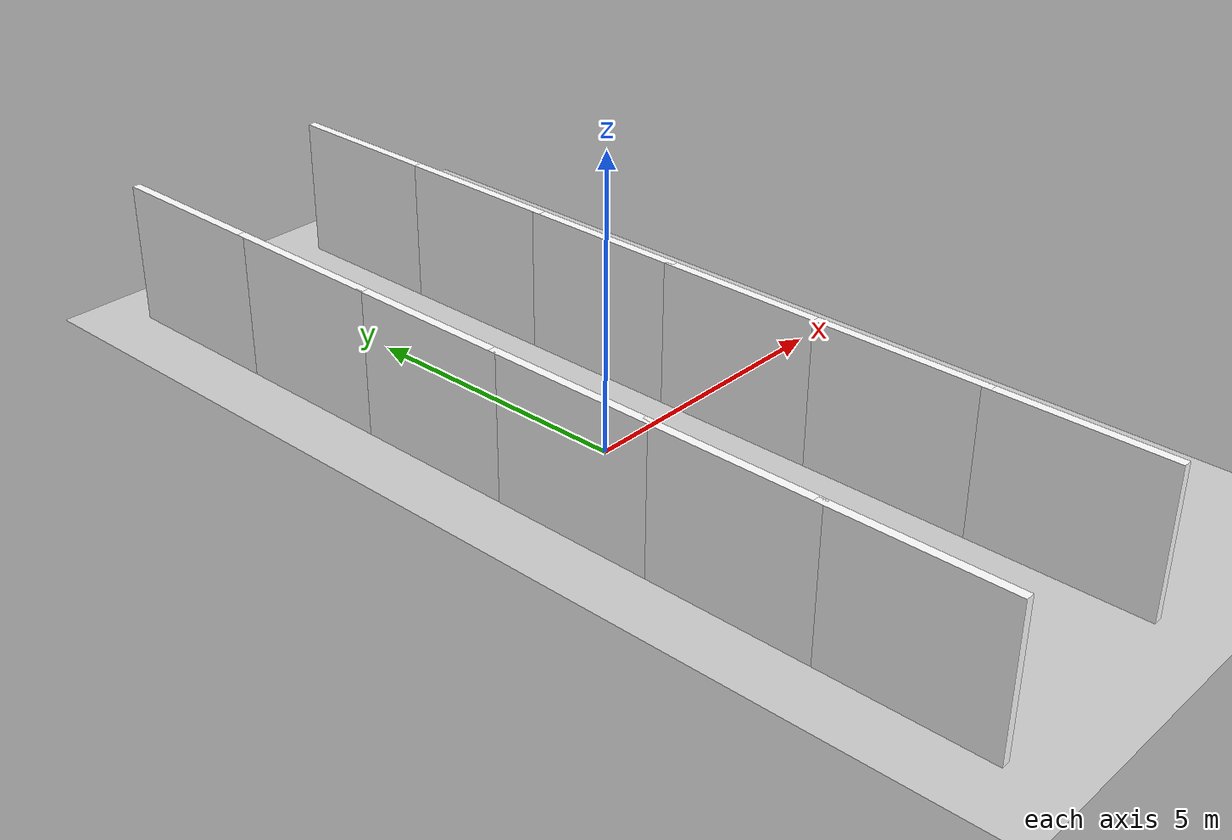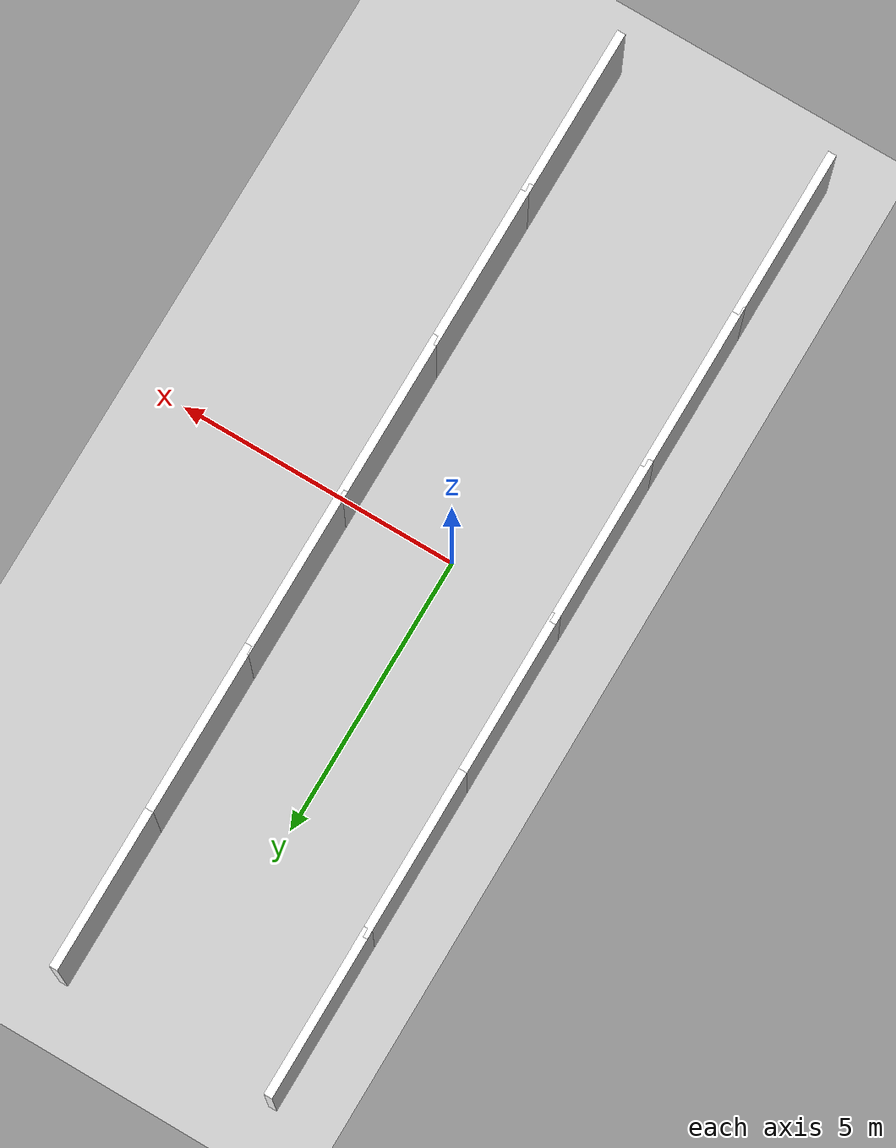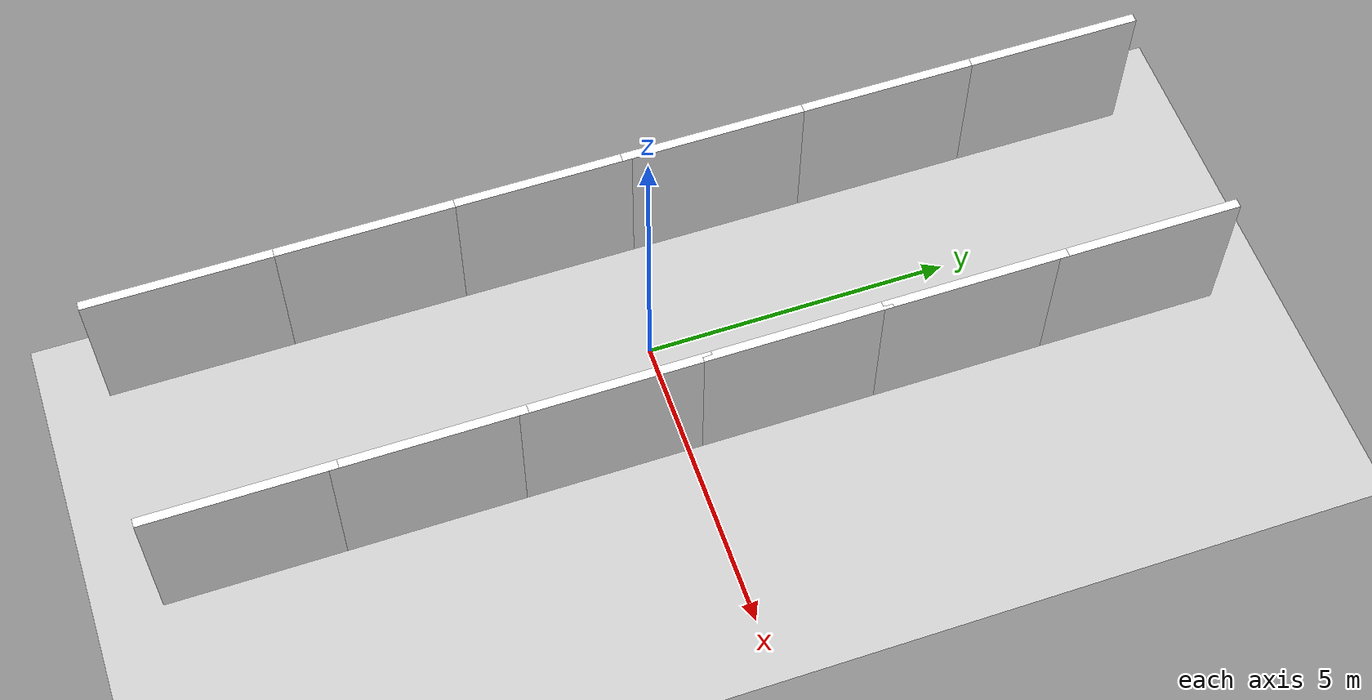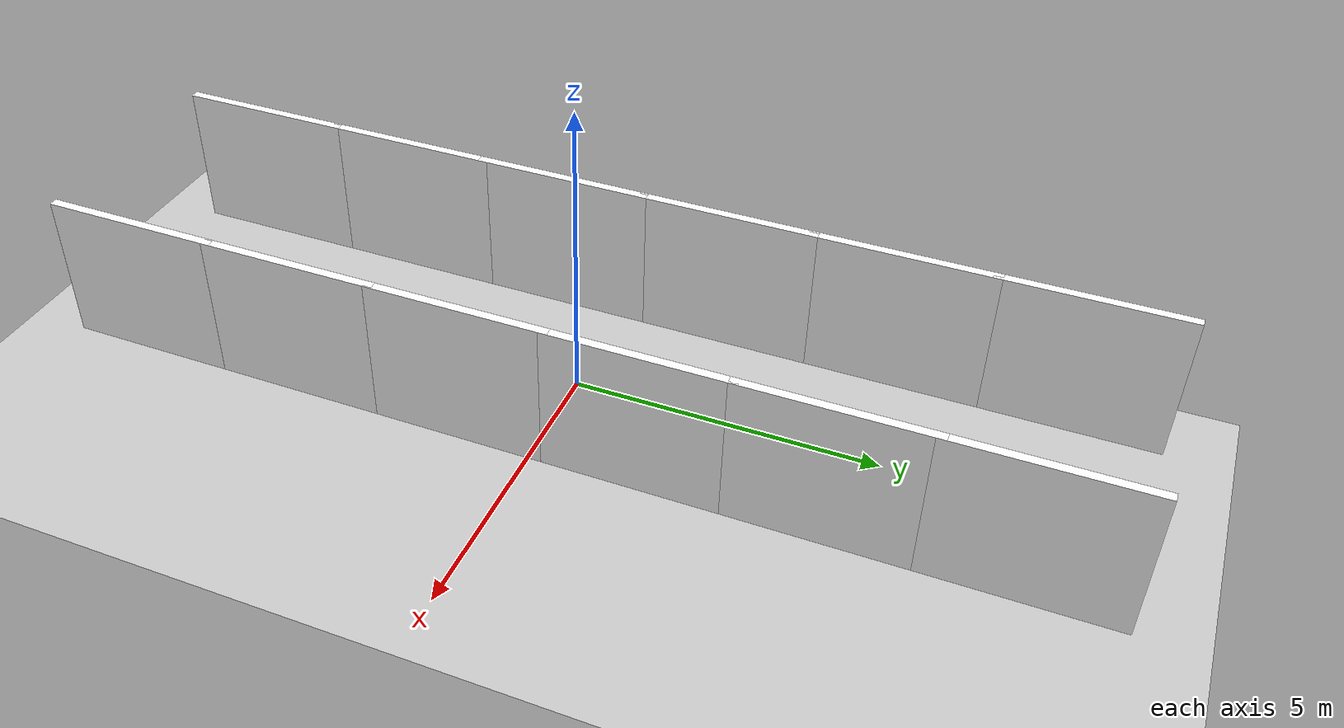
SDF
<sdf version="1.6">
 <world name="default">
  <model name="ground_plane">
   <static>1</static>
   <link name="link">
    <collision name="collision">
     <geometry><plane><normal>0 0 1</normal><size>100 100</size></plane></geometry>
     <surface><friction><ode><mu>100</mu><mu2>50</mu2></ode></friction></surface>
    </collision>
    <visual name="visual">
     <cast_shadows>0</cast_shadows>
     <geometry><plane><normal>0 0 1</normal><size>100 100</size></plane></geometry>
     <material>
      <script><uri>file://media/materials/scripts/gazebo.material</uri><name>Gazebo/Grey</name></script>
     </material>
    </visual>
   </link>
  </model>
  <model name="Corridor">
   <link name="Wall_0">
    <pose>-1.925 7.125 0 0 0 -1.5708</pose>
    <inertial>
     <mass>1</mass>
     <inertia><ixx>1</ixx><ixy>0</ixy><ixz>0</ixz><iyy>1</iyy><iyz>0</iyz><izz>1</izz></inertia>
    </inertial>
    <visual name="Wall_0_Visual">
     <pose>0 0 1.25 0 -0 0</pose>
     <geometry><box><size>3 0.15 2.5</size></box></geometry>
     <material>
      <script><uri>file://media/materials/scripts/gazebo.material</uri><name>BernoulliMix/Five</name></script>
      <ambient>1 1 1 1</ambient>
      <shader type="vertex"><normal_map>__default__</normal_map></shader>
      <lighting>0</lighting>
      <emissive>0 0 0 1</emissive>
     </material>
     <meta><layer>0</layer></meta>
    </visual>
    <collision name="Wall_0_Collision">
     <pose>0 0 1.25 0 -0 0</pose>
     <geometry><box><size>3 0.15 2.5</size></box></geometry>
     <surface>
      <friction>
       <ode><mu>1</mu><mu2>1</mu2><fdir1>0 0 0</fdir1><slip1>0</slip1><slip2>0</slip2></ode>
       <torsional>
        <coefficient>1</coefficient>
        <patch_radius>0</patch_radius>
        <surface_radius>0</surface_radius>
        <use_patch_radius>1</use_patch_radius>
        <ode><slip>0</slip></ode>
       </torsional>
      </friction>
      <bounce><restitution_coefficient>0</restitution_coefficient><threshold>1e+06</threshold></bounce>
      <contact>
       <collide_without_contact>0</collide_without_contact>
       <collide_without_contact_bitmask>1</collide_without_contact_bitmask>
       <collide_bitmask>1</collide_bitmask>
       <ode>
        <soft_cfm>0</soft_cfm>
        <soft_erp>0.2</soft_erp>
        <kp>1e+13</kp>
        <kd>1</kd>
        <max_vel>0.01</max_vel>
        <min_depth>0</min_depth>
       </ode>
       <bullet>
        <split_impulse>1</split_impulse>
        <split_impulse_penetration_threshold>-0.01</split_impulse_penetration_threshold>
        <soft_cfm>0</soft_cfm>
        <soft_erp>0.2</soft_erp>
        <kp>1e+13</kp>
        <kd>1</kd>
       </bullet>
      </contact>
     </surface>
    </collision>
   </link>
   <link name="Wall_10">
    <pose>1.925 -7.125 0 0 -0 1.5708</pose>
    <inertial>
     <mass>1</mass>
     <inertia><ixx>1</ixx><ixy>0</ixy><ixz>0</ixz><iyy>1</iyy><iyz>0</iyz><izz>1</izz></inertia>
    </inertial>
    <visual name="Wall_10_Visual">
     <pose>0 0 1.25 0 -0 0</pose>
     <geometry><box><size>3 0.15 2.5</size></box></geometry>
     <material>
      <script><uri>file://media/materials/scripts/gazebo.material</uri><name>BernoulliMix/Five</name></script>
      <ambient>1 1 1 1</ambient>
      <shader type="vertex"><normal_map>__default__</normal_map></shader>
      <lighting>0</lighting>
      <emissive>0 0 0 1</emissive>
     </material>
     <meta><layer>0</layer></meta>
    </visual>
    <collision name="Wall_10_Collision">
     <pose>0 0 1.25 0 -0 0</pose>
     <geometry><box><size>3 0.15 2.5</size></box></geometry>
     <surface>
      <friction>
       <ode><mu>1</mu><mu2>1</mu2><fdir1>0 0 0</fdir1><slip1>0</slip1><slip2>0</slip2></ode>
       <torsional>
        <coefficient>1</coefficient>
        <patch_radius>0</patch_radius>
        <surface_radius>0</surface_radius>
        <use_patch_radius>1</use_patch_radius>
        <ode><slip>0</slip></ode>
       </torsional>
      </friction>
      <bounce><restitution_coefficient>0</restitution_coefficient><threshold>1e+06</threshold></bounce>
      <contact>
       <collide_without_contact>0</collide_without_contact>
       <collide_without_contact_bitmask>1</collide_without_contact_bitmask>
       <collide_bitmask>1</collide_bitmask>
       <ode>
        <soft_cfm>0</soft_cfm>
        <soft_erp>0.2</soft_erp>
        <kp>1e+13</kp>
        <kd>1</kd>
        <max_vel>0.01</max_vel>
        <min_depth>0</min_depth>
       </ode>
       <bullet>
        <split_impulse>1</split_impulse>
        <split_impulse_penetration_threshold>-0.01</split_impulse_penetration_threshold>
        <soft_cfm>0</soft_cfm>
        <soft_erp>0.2</soft_erp>
        <kp>1e+13</kp>
        <kd>1</kd>
       </bullet>
      </contact>
     </surface>
    </collision>
   </link>
   <link name="Wall_11">
    <pose>1.925 -4.275 0 0 -0 1.5708</pose>
    <inertial>
     <mass>1</mass>
     <inertia><ixx>1</ixx><ixy>0</ixy><ixz>0</ixz><iyy>1</iyy><iyz>0</iyz><izz>1</izz></inertia>
    </inertial>
    <visual name="Wall_11_Visual">
     <pose>0 0 1.25 0 -0 0</pose>
     <geometry><box><size>3 0.15 2.5</size></box></geometry>
     <material>
      <script><uri>file://media/materials/scripts/gazebo.material</uri><name>BernoulliMix/Five</name></script>
      <ambient>1 1 1 1</ambient>
      <shader type="vertex"><normal_map>__default__</normal_map></shader>
      <lighting>0</lighting>
      <emissive>0 0 0 1</emissive>
     </material>
     <meta><layer>0</layer></meta>
    </visual>
    <collision name="Wall_11_Collision">
     <pose>0 0 1.25 0 -0 0</pose>
     <geometry><box><size>3 0.15 2.5</size></box></geometry>
     <surface>
      <friction>
       <ode><mu>1</mu><mu2>1</mu2><fdir1>0 0 0</fdir1><slip1>0</slip1><slip2>0</slip2></ode>
       <torsional>
        <coefficient>1</coefficient>
        <patch_radius>0</patch_radius>
        <surface_radius>0</surface_radius>
        <use_patch_radius>1</use_patch_radius>
        <ode><slip>0</slip></ode>
       </torsional>
      </friction>
      <bounce><restitution_coefficient>0</restitution_coefficient><threshold>1e+06</threshold></bounce>
      <contact>
       <collide_without_contact>0</collide_without_contact>
       <collide_without_contact_bitmask>1</collide_without_contact_bitmask>
       <collide_bitmask>1</collide_bitmask>
       <ode>
        <soft_cfm>0</soft_cfm>
        <soft_erp>0.2</soft_erp>
        <kp>1e+13</kp>
        <kd>1</kd>
        <max_vel>0.01</max_vel>
        <min_depth>0</min_depth>
       </ode>
       <bullet>
        <split_impulse>1</split_impulse>
        <split_impulse_penetration_threshold>-0.01</split_impulse_penetration_threshold>
        <soft_cfm>0</soft_cfm>
        <soft_erp>0.2</soft_erp>
        <kp>1e+13</kp>
        <kd>1</kd>
       </bullet>
      </contact>
     </surface>
    </collision>
   </link>
   <link name="Wall_12">
    <pose>1.925 -1.425 0 0 -0 1.5708</pose>
    <inertial>
     <mass>1</mass>
     <inertia><ixx>1</ixx><ixy>0</ixy><ixz>0</ixz><iyy>1</iyy><iyz>0</iyz><izz>1</izz></inertia>
    </inertial>
    <visual name="Wall_12_Visual">
     <pose>0 0 1.25 0 -0 0</pose>
     <geometry><box><size>3 0.15 2.5</size></box></geometry>
     <material>
      <script><uri>file://media/materials/scripts/gazebo.material</uri><name>BernoulliMix/Five</name></script>
      <ambient>1 1 1 1</ambient>
      <shader type="vertex"><normal_map>__default__</normal_map></shader>
      <lighting>0</lighting>
      <emissive>0 0 0 1</emissive>
     </material>
     <meta><layer>0</layer></meta>
    </visual>
    <collision name="Wall_12_Collision">
     <pose>0 0 1.25 0 -0 0</pose>
     <geometry><box><size>3 0.15 2.5</size></box></geometry>
     <surface>
      <friction>
       <ode><mu>1</mu><mu2>1</mu2><fdir1>0 0 0</fdir1><slip1>0</slip1><slip2>0</slip2></ode>
       <torsional>
        <coefficient>1</coefficient>
        <patch_radius>0</patch_radius>
        <surface_radius>0</surface_radius>
        <use_patch_radius>1</use_patch_radius>
        <ode><slip>0</slip></ode>
       </torsional>
      </friction>
      <bounce><restitution_coefficient>0</restitution_coefficient><threshold>1e+06</threshold></bounce>
      <contact>
       <collide_without_contact>0</collide_without_contact>
       <collide_without_contact_bitmask>1</collide_without_contact_bitmask>
       <collide_bitmask>1</collide_bitmask>
       <ode>
        <soft_cfm>0</soft_cfm>
        <soft_erp>0.2</soft_erp>
        <kp>1e+13</kp>
        <kd>1</kd>
        <max_vel>0.01</max_vel>
        <min_depth>0</min_depth>
       </ode>
       <bullet>
        <split_impulse>1</split_impulse>
        <split_impulse_penetration_threshold>-0.01</split_impulse_penetration_threshold>
        <soft_cfm>0</soft_cfm>
        <soft_erp>0.2</soft_erp>
        <kp>1e+13</kp>
        <kd>1</kd>
       </bullet>
      </contact>
     </surface>
    </collision>
   </link>
   <link name="Wall_14">
    <pose>1.925 1.425 0 0 -0 1.5708</pose>
    <inertial>
     <mass>1</mass>
     <inertia><ixx>1</ixx><ixy>0</ixy><ixz>0</ixz><iyy>1</iyy><iyz>0</iyz><izz>1</izz></inertia>
    </inertial>
    <visual name="Wall_14_Visual">
     <pose>0 0 1.25 0 -0 0</pose>
     <geometry><box><size>3 0.15 2.5</size></box></geometry>
     <material>
      <script><uri>file://media/materials/scripts/gazebo.material</uri><name>BernoulliMix/Five</name></script>
      <ambient>1 1 1 1</ambient>
      <shader type="vertex"><normal_map>__default__</normal_map></shader>
      <lighting>0</lighting>
      <emissive>0 0 0 1</emissive>
     </material>
     <meta><layer>0</layer></meta>
    </visual>
    <collision name="Wall_14_Collision">
     <pose>0 0 1.25 0 -0 0</pose>
     <geometry><box><size>3 0.15 2.5</size></box></geometry>
     <surface>
      <friction>
       <ode><mu>1</mu><mu2>1</mu2><fdir1>0 0 0</fdir1><slip1>0</slip1><slip2>0</slip2></ode>
       <torsional>
        <coefficient>1</coefficient>
        <patch_radius>0</patch_radius>
        <surface_radius>0</surface_radius>
        <use_patch_radius>1</use_patch_radius>
        <ode><slip>0</slip></ode>
       </torsional>
      </friction>
      <bounce><restitution_coefficient>0</restitution_coefficient><threshold>1e+06</threshold></bounce>
      <contact>
       <collide_without_contact>0</collide_without_contact>
       <collide_without_contact_bitmask>1</collide_without_contact_bitmask>
       <collide_bitmask>1</collide_bitmask>
       <ode>
        <soft_cfm>0</soft_cfm>
        <soft_erp>0.2</soft_erp>
        <kp>1e+13</kp>
        <kd>1</kd>
        <max_vel>0.01</max_vel>
        <min_depth>0</min_depth>
       </ode>
       <bullet>
        <split_impulse>1</split_impulse>
        <split_impulse_penetration_threshold>-0.01</split_impulse_penetration_threshold>
        <soft_cfm>0</soft_cfm>
        <soft_erp>0.2</soft_erp>
        <kp>1e+13</kp>
        <kd>1</kd>
       </bullet>
      </contact>
     </surface>
    </collision>
   </link>
   <link name="Wall_15">
    <pose>1.925 4.275 0 0 -0 1.5708</pose>
    <inertial>
     <mass>1</mass>
     <inertia><ixx>1</ixx><ixy>0</ixy><ixz>0</ixz><iyy>1</iyy><iyz>0</iyz><izz>1</izz></inertia>
    </inertial>
    <visual name="Wall_15_Visual">
     <pose>0 0 1.25 0 -0 0</pose>
     <geometry><box><size>3 0.15 2.5</size></box></geometry>
     <material>
      <script><uri>file://media/materials/scripts/gazebo.material</uri><name>BernoulliMix/Five</name></script>
      <ambient>1 1 1 1</ambient>
      <shader type="vertex"><normal_map>__default__</normal_map></shader>
      <lighting>0</lighting>
      <emissive>0 0 0 1</emissive>
     </material>
     <meta><layer>0</layer></meta>
    </visual>
    <collision name="Wall_15_Collision">
     <pose>0 0 1.25 0 -0 0</pose>
     <geometry><box><size>3 0.15 2.5</size></box></geometry>
     <surface>
      <friction>
       <ode><mu>1</mu><mu2>1</mu2><fdir1>0 0 0</fdir1><slip1>0</slip1><slip2>0</slip2></ode>
       <torsional>
        <coefficient>1</coefficient>
        <patch_radius>0</patch_radius>
        <surface_radius>0</surface_radius>
        <use_patch_radius>1</use_patch_radius>
        <ode><slip>0</slip></ode>
       </torsional>
      </friction>
      <bounce><restitution_coefficient>0</restitution_coefficient><threshold>1e+06</threshold></bounce>
      <contact>
       <collide_without_contact>0</collide_without_contact>
       <collide_without_contact_bitmask>1</collide_without_contact_bitmask>
       <collide_bitmask>1</collide_bitmask>
       <ode>
        <soft_cfm>0</soft_cfm>
        <soft_erp>0.2</soft_erp>
        <kp>1e+13</kp>
        <kd>1</kd>
        <max_vel>0.01</max_vel>
        <min_depth>0</min_depth>
       </ode>
       <bullet>
        <split_impulse>1</split_impulse>
        <split_impulse_penetration_threshold>-0.01</split_impulse_penetration_threshold>
        <soft_cfm>0</soft_cfm>
        <soft_erp>0.2</soft_erp>
        <kp>1e+13</kp>
        <kd>1</kd>
       </bullet>
      </contact>
     </surface>
    </collision>
   </link>
   <link name="Wall_16">
    <pose>1.925 7.125 0 0 -0 1.5708</pose>
    <inertial>
     <mass>1</mass>
     <inertia><ixx>1</ixx><ixy>0</ixy><ixz>0</ixz><iyy>1</iyy><iyz>0</iyz><izz>1</izz></inertia>
    </inertial>
    <visual name="Wall_16_Visual">
     <pose>0 0 1.25 0 -0 0</pose>
     <geometry><box><size>3 0.15 2.5</size></box></geometry>
     <material>
      <script><uri>file://media/materials/scripts/gazebo.material</uri><name>BernoulliMix/Five</name></script>
      <ambient>1 1 1 1</ambient>
      <shader type="vertex"><normal_map>__default__</normal_map></shader>
      <lighting>0</lighting>
      <emissive>0 0 0 1</emissive>
     </material>
     <meta><layer>0</layer></meta>
    </visual>
    <collision name="Wall_16_Collision">
     <pose>0 0 1.25 0 -0 0</pose>
     <geometry><box><size>3 0.15 2.5</size></box></geometry>
     <surface>
      <friction>
       <ode><mu>1</mu><mu2>1</mu2><fdir1>0 0 0</fdir1><slip1>0</slip1><slip2>0</slip2></ode>
       <torsional>
        <coefficient>1</coefficient>
        <patch_radius>0</patch_radius>
        <surface_radius>0</surface_radius>
        <use_patch_radius>1</use_patch_radius>
        <ode><slip>0</slip></ode>
       </torsional>
      </friction>
      <bounce><restitution_coefficient>0</restitution_coefficient><threshold>1e+06</threshold></bounce>
      <contact>
       <collide_without_contact>0</collide_without_contact>
       <collide_without_contact_bitmask>1</collide_without_contact_bitmask>
       <collide_bitmask>1</collide_bitmask>
       <ode>
        <soft_cfm>0</soft_cfm>
        <soft_erp>0.2</soft_erp>
        <kp>1e+13</kp>
        <kd>1</kd>
        <max_vel>0.01</max_vel>
        <min_depth>0</min_depth>
       </ode>
       <bullet>
        <split_impulse>1</split_impulse>
        <split_impulse_penetration_threshold>-0.01</split_impulse_penetration_threshold>
        <soft_cfm>0</soft_cfm>
        <soft_erp>0.2</soft_erp>
        <kp>1e+13</kp>
        <kd>1</kd>
       </bullet>
      </contact>
     </surface>
    </collision>
   </link>
   <link name="Wall_2">
    <pose>-1.925 4.275 0 0 0 -1.5708</pose>
    <inertial>
     <mass>1</mass>
     <inertia><ixx>1</ixx><ixy>0</ixy><ixz>0</ixz><iyy>1</iyy><iyz>0</iyz><izz>1</izz></inertia>
    </inertial>
    <visual name="Wall_2_Visual">
     <pose>0 0 1.25 0 -0 0</pose>
     <geometry><box><size>3 0.15 2.5</size></box></geometry>
     <material>
      <script><uri>file://media/materials/scripts/gazebo.material</uri><name>BernoulliMix/Five</name></script>
      <ambient>1 1 1 1</ambient>
      <shader type="vertex"><normal_map>__default__</normal_map></shader>
      <lighting>0</lighting>
      <emissive>0 0 0 1</emissive>
     </material>
     <meta><layer>0</layer></meta>
    </visual>
    <collision name="Wall_2_Collision">
     <pose>0 0 1.25 0 -0 0</pose>
     <geometry><box><size>3 0.15 2.5</size></box></geometry>
     <surface>
      <friction>
       <ode><mu>1</mu><mu2>1</mu2><fdir1>0 0 0</fdir1><slip1>0</slip1><slip2>0</slip2></ode>
       <torsional>
        <coefficient>1</coefficient>
        <patch_radius>0</patch_radius>
        <surface_radius>0</surface_radius>
        <use_patch_radius>1</use_patch_radius>
        <ode><slip>0</slip></ode>
       </torsional>
      </friction>
      <bounce><restitution_coefficient>0</restitution_coefficient><threshold>1e+06</threshold></bounce>
      <contact>
       <collide_without_contact>0</collide_without_contact>
       <collide_without_contact_bitmask>1</collide_without_contact_bitmask>
       <collide_bitmask>1</collide_bitmask>
       <ode>
        <soft_cfm>0</soft_cfm>
        <soft_erp>0.2</soft_erp>
        <kp>1e+13</kp>
        <kd>1</kd>
        <max_vel>0.01</max_vel>
        <min_depth>0</min_depth>
       </ode>
       <bullet>
        <split_impulse>1</split_impulse>
        <split_impulse_penetration_threshold>-0.01</split_impulse_penetration_threshold>
        <soft_cfm>0</soft_cfm>
        <soft_erp>0.2</soft_erp>
        <kp>1e+13</kp>
        <kd>1</kd>
       </bullet>
      </contact>
     </surface>
    </collision>
   </link>
   <link name="Wall_3">
    <pose>-1.925 1.425 0 0 0 -1.5708</pose>
    <inertial>
     <mass>1</mass>
     <inertia><ixx>1</ixx><ixy>0</ixy><ixz>0</ixz><iyy>1</iyy><iyz>0</iyz><izz>1</izz></inertia>
    </inertial>
    <visual name="Wall_3_Visual">
     <pose>0 0 1.25 0 -0 0</pose>
     <geometry><box><size>3 0.15 2.5</size></box></geometry>
     <material>
      <script><uri>file://media/materials/scripts/gazebo.material</uri><name>BernoulliMix/Five</name></script>
      <ambient>1 1 1 1</ambient>
      <shader type="vertex"><normal_map>__default__</normal_map></shader>
      <lighting>0</lighting>
      <emissive>0 0 0 1</emissive>
     </material>
     <meta><layer>0</layer></meta>
    </visual>
    <collision name="Wall_3_Collision">
     <pose>0 0 1.25 0 -0 0</pose>
     <geometry><box><size>3 0.15 2.5</size></box></geometry>
     <surface>
      <friction>
       <ode><mu>1</mu><mu2>1</mu2><fdir1>0 0 0</fdir1><slip1>0</slip1><slip2>0</slip2></ode>
       <torsional>
        <coefficient>1</coefficient>
        <patch_radius>0</patch_radius>
        <surface_radius>0</surface_radius>
        <use_patch_radius>1</use_patch_radius>
        <ode><slip>0</slip></ode>
       </torsional>
      </friction>
      <bounce><restitution_coefficient>0</restitution_coefficient><threshold>1e+06</threshold></bounce>
      <contact>
       <collide_without_contact>0</collide_without_contact>
       <collide_without_contact_bitmask>1</collide_without_contact_bitmask>
       <collide_bitmask>1</collide_bitmask>
       <ode>
        <soft_cfm>0</soft_cfm>
        <soft_erp>0.2</soft_erp>
        <kp>1e+13</kp>
        <kd>1</kd>
        <max_vel>0.01</max_vel>
        <min_depth>0</min_depth>
       </ode>
       <bullet>
        <split_impulse>1</split_impulse>
        <split_impulse_penetration_threshold>-0.01</split_impulse_penetration_threshold>
        <soft_cfm>0</soft_cfm>
        <soft_erp>0.2</soft_erp>
        <kp>1e+13</kp>
        <kd>1</kd>
       </bullet>
      </contact>
     </surface>
    </collision>
   </link>
   <link name="Wall_5">
    <pose>-1.925 -1.425 0 0 0 -1.5708</pose>
    <inertial>
     <mass>1</mass>
     <inertia><ixx>1</ixx><ixy>0</ixy><ixz>0</ixz><iyy>1</iyy><iyz>0</iyz><izz>1</izz></inertia>
    </inertial>
    <visual name="Wall_5_Visual">
     <pose>0 0 1.25 0 -0 0</pose>
     <geometry><box><size>3 0.15 2.5</size></box></geometry>
     <material>
      <script><uri>file://media/materials/scripts/gazebo.material</uri><name>BernoulliMix/Five</name></script>
      <ambient>1 1 1 1</ambient>
      <shader type="vertex"><normal_map>__default__</normal_map></shader>
      <lighting>0</lighting>
      <emissive>0 0 0 1</emissive>
     </material>
     <meta><layer>0</layer></meta>
    </visual>
    <collision name="Wall_5_Collision">
     <pose>0 0 1.25 0 -0 0</pose>
     <geometry><box><size>3 0.15 2.5</size></box></geometry>
     <surface>
      <friction>
       <ode><mu>1</mu><mu2>1</mu2><fdir1>0 0 0</fdir1><slip1>0</slip1><slip2>0</slip2></ode>
       <torsional>
        <coefficient>1</coefficient>
        <patch_radius>0</patch_radius>
        <surface_radius>0</surface_radius>
        <use_patch_radius>1</use_patch_radius>
        <ode><slip>0</slip></ode>
       </torsional>
      </friction>
      <bounce><restitution_coefficient>0</restitution_coefficient><threshold>1e+06</threshold></bounce>
      <contact>
       <collide_without_contact>0</collide_without_contact>
       <collide_without_contact_bitmask>1</collide_without_contact_bitmask>
       <collide_bitmask>1</collide_bitmask>
       <ode>
        <soft_cfm>0</soft_cfm>
        <soft_erp>0.2</soft_erp>
        <kp>1e+13</kp>
        <kd>1</kd>
        <max_vel>0.01</max_vel>
        <min_depth>0</min_depth>
       </ode>
       <bullet>
        <split_impulse>1</split_impulse>
        <split_impulse_penetration_threshold>-0.01</split_impulse_penetration_threshold>
        <soft_cfm>0</soft_cfm>
        <soft_erp>0.2</soft_erp>
        <kp>1e+13</kp>
        <kd>1</kd>
       </bullet>
      </contact>
     </surface>
    </collision>
   </link>
   <link name="Wall_6">
    <pose>-1.925 -4.275 0 0 0 -1.5708</pose>
    <inertial>
     <mass>1</mass>
     <inertia><ixx>1</ixx><ixy>0</ixy><ixz>0</ixz><iyy>1</iyy><iyz>0</iyz><izz>1</izz></inertia>
    </inertial>
    <visual name="Wall_6_Visual">
     <pose>0 0 1.25 0 -0 0</pose>
     <geometry><box><size>3 0.15 2.5</size></box></geometry>
     <material>
      <script><uri>file://media/materials/scripts/gazebo.material</uri><name>BernoulliMix/Five</name></script>
      <ambient>1 1 1 1</ambient>
      <shader type="vertex"><normal_map>__default__</normal_map></shader>
      <lighting>0</lighting>
      <emissive>0 0 0 1</emissive>
     </material>
     <meta><layer>0</layer></meta>
    </visual>
    <collision name="Wall_6_Collision">
     <pose>0 0 1.25 0 -0 0</pose>
     <geometry><box><size>3 0.15 2.5</size></box></geometry>
     <surface>
      <friction>
       <ode><mu>1</mu><mu2>1</mu2><fdir1>0 0 0</fdir1><slip1>0</slip1><slip2>0</slip2></ode>
       <torsional>
        <coefficient>1</coefficient>
        <patch_radius>0</patch_radius>
        <surface_radius>0</surface_radius>
        <use_patch_radius>1</use_patch_radius>
        <ode><slip>0</slip></ode>
       </torsional>
      </friction>
      <bounce><restitution_coefficient>0</restitution_coefficient><threshold>1e+06</threshold></bounce>
      <contact>
       <collide_without_contact>0</collide_without_contact>
       <collide_without_contact_bitmask>1</collide_without_contact_bitmask>
       <collide_bitmask>1</collide_bitmask>
       <ode>
        <soft_cfm>0</soft_cfm>
        <soft_erp>0.2</soft_erp>
        <kp>1e+13</kp>
        <kd>1</kd>
        <max_vel>0.01</max_vel>
        <min_depth>0</min_depth>
       </ode>
       <bullet>
        <split_impulse>1</split_impulse>
        <split_impulse_penetration_threshold>-0.01</split_impulse_penetration_threshold>
        <soft_cfm>0</soft_cfm>
        <soft_erp>0.2</soft_erp>
        <kp>1e+13</kp>
        <kd>1</kd>
       </bullet>
      </contact>
     </surface>
    </collision>
   </link>
   <link name="Wall_7">
    <pose>-1.925 -7.125 0 0 0 -1.5708</pose>
    <inertial>
     <mass>1</mass>
     <inertia><ixx>1</ixx><ixy>0</ixy><ixz>0</ixz><iyy>1</iyy><iyz>0</iyz><izz>1</izz></inertia>
    </inertial>
    <visual name="Wall_7_Visual">
     <pose>0 0 1.25 0 -0 0</pose>
     <geometry><box><size>3 0.15 2.5</size></box></geometry>
     <material>
      <script><uri>file://media/materials/scripts/gazebo.material</uri><name>BernoulliMix/Five</name></script>
      <ambient>1 1 1 1</ambient>
      <shader type="vertex"><normal_map>__default__</normal_map></shader>
      <lighting>0</lighting>
      <emissive>0 0 0 1</emissive>
     </material>
     <meta><layer>0</layer></meta>
    </visual>
    <collision name="Wall_7_Collision">
     <pose>0 0 1.25 0 -0 0</pose>
     <geometry><box><size>3 0.15 2.5</size></box></geometry>
     <surface>
      <friction>
       <ode><mu>1</mu><mu2>1</mu2><fdir1>0 0 0</fdir1><slip1>0</slip1><slip2>0</slip2></ode>
       <torsional>
        <coefficient>1</coefficient>
        <patch_radius>0</patch_radius>
        <surface_radius>0</surface_radius>
        <use_patch_radius>1</use_patch_radius>
        <ode><slip>0</slip></ode>
       </torsional>
      </friction>
      <bounce><restitution_coefficient>0</restitution_coefficient><threshold>1e+06</threshold></bounce>
      <contact>
       <collide_without_contact>0</collide_without_contact>
       <collide_without_contact_bitmask>1</collide_without_contact_bitmask>
       <collide_bitmask>1</collide_bitmask>
       <ode>
        <soft_cfm>0</soft_cfm>
        <soft_erp>0.2</soft_erp>
        <kp>1e+13</kp>
        <kd>1</kd>
        <max_vel>0.01</max_vel>
        <min_depth>0</min_depth>
       </ode>
       <bullet>
        <split_impulse>1</split_impulse>
        <split_impulse_penetration_threshold>-0.01</split_impulse_penetration_threshold>
        <soft_cfm>0</soft_cfm>
        <soft_erp>0.2</soft_erp>
        <kp>1e+13</kp>
        <kd>1</kd>
       </bullet>
      </contact>
     </surface>
    </collision>
   </link>
   <static>1</static>
   <pose>-0.094801 0.296105 0 0 -0 0</pose>
  </model>
 </world>
</sdf>
